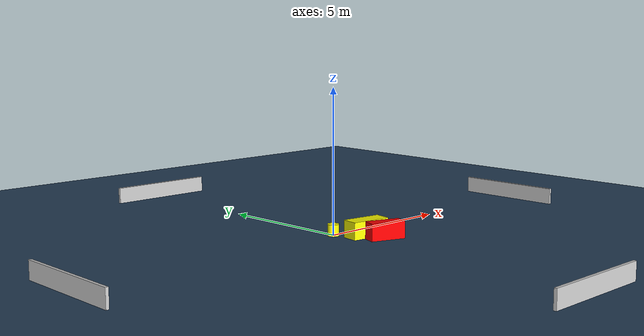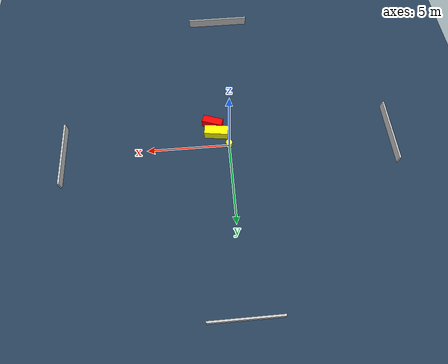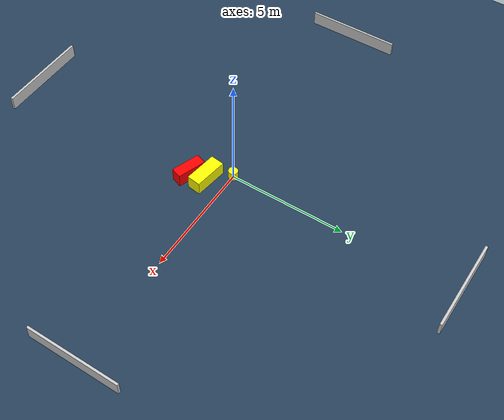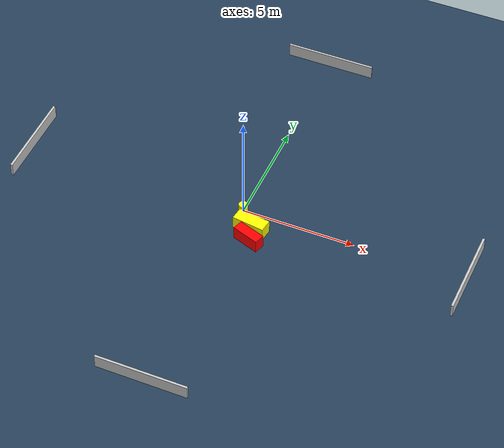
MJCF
<?xml version="1.0" ?>
<mujoco model="generated_environment">
  <option timestep="0.01" integrator="RK4" cone="elliptic"/>
  <default>
    <geom density="1"/>
  </default>
  <asset>
    <texture builtin="gradient" height="3072" name="skybox" rgb1="0.3 0.5 0.7" rgb2="0 0 0" type="skybox" width="512"/>
    <texture builtin="checker" height="300" name="groundplane" rgb1="0.2 0.3 0.4" rgb2="0.1 0.2 0.3" type="2d" width="300"/>
    <material name="groundplane" reflectance="0.2" texrepeat="5 5" texture="groundplane"/>
  </asset>
  <worldbody>
    <light dir="0 0 -1" directional="true" pos="0 0 1.5"/>
    <geom condim="3" friction="0.5 0.005 0.001" material="groundplane" name="floor" pos="0 0 0" size="0 0 0.05" type="plane"/>
    <body name="walls">
      <geom name="wall_1" condim="4" pos="-10.0 0.0 0.3" rgba="0.800000011920929 0.800000011920929 0.800000011920929 1.0" size="0.05 2.0 0.3" type="box"/>
      <geom name="wall_2" condim="4" pos="10.0 0.0 0.3" rgba="0.800000011920929 0.800000011920929 0.800000011920929 1.0" size="0.05 2.0 0.3" type="box"/>
      <geom name="wall_3" condim="4" pos="0.0 -10.0 0.3" rgba="0.800000011920929 0.800000011920929 0.800000011920929 1.0" size="2.0 0.05 0.3" type="box"/>
      <geom name="wall_4" condim="4" pos="0.0 10.0 0.3" rgba="0.800000011920929 0.800000011920929 0.800000011920929 1.0" size="2.0 0.05 0.3" type="box"/>
    </body>
    <body name="robot">
      <joint name="joint_x" type="slide" pos="0 0 0" axis="1 0 0"/>
      <joint name="joint_y" type="slide" pos="0 0 0" axis="0 1 0"/>
      <geom name="robot" type="cylinder" pos="0.0 0.0 0.2" size="0.2 0.2 0.0" mass="5.0" friction="1.0 0.005 0.0001" condim="4" rgba="1.0 1.0 0.0 1.0"/>
    </body>
    <body name="obstacle_1_movable">
      <geom name="obstacle_1_movable" condim="4" pos="0.7243332241290261 -0.841574985628981 0.3" euler="0 0 82.23583031573018" friction="0.0 0.005 0.001" rgba="1.0 1.0 0.0 1.0" size="0.2936920581863437 0.717354714548649 0.3" type="box" mass="0.1"/>
      <joint type="free"/>
    </body>
    <body name="obstacle_2_static">
      <geom name="obstacle_2_static" condim="4" pos="0.905671956110785 -1.541291892931774 0.3" euler="0 0 160.93165525847502" friction="0.0 0.005 0.001" rgba="1.0 0.0 0.0 1.0" size="0.6226005331605913 0.23448569206546765 0.3" type="box"/>
    </body>
  </worldbody>
  <actuator>
    <motor name="actuator_x" joint="joint_x" gear="1" ctrlrange="-1 1"/>
    <motor name="actuator_y" joint="joint_y" gear="1" ctrlrange="-1 1"/>
  </actuator>
</mujoco>
